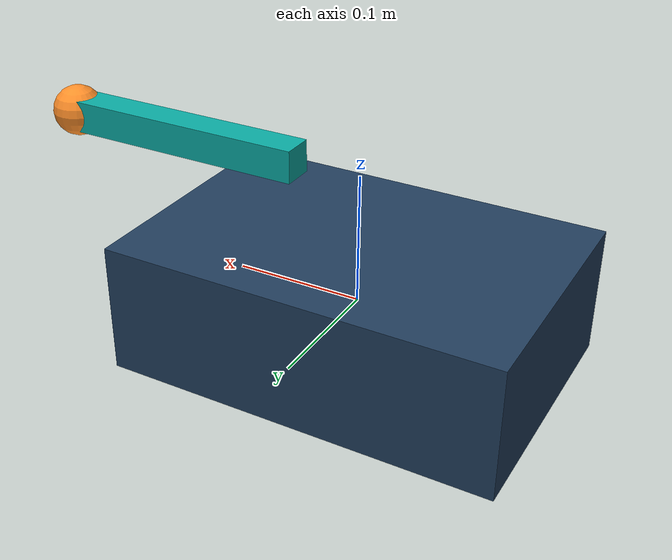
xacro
<?xml version="1.0"?>
<robot xmlns:xacro="http://www.ros.org/wiki/xacro" name="practice_cart">
  <xacro:arg name="frame_prefix" default="rover/"/><xacro:arg name="mount_x" default="0.05"/>
  <xacro:arg name="visual_x" default="0.10"/><xacro:arg name="arm_axis" default="0 0 1"/>
  <xacro:property name="p" value="$(arg frame_prefix)"/>
  <link name="${p}cart_base"><visual><geometry><box size="0.30 0.20 0.10"/></geometry><material name="navy"><color rgba="0.13 0.24 0.36 1"/></material></visual></link>
  <link name="${p}arm_link"><visual><origin xyz="$(arg visual_x) 0 0"/><geometry><box size="0.20 0.025 0.025"/></geometry><material name="teal"><color rgba="0.04 0.67 0.64 1"/></material></visual></link>
  <joint name="arm_joint" type="revolute"><parent link="${p}cart_base"/><child link="${p}arm_link"/><origin xyz="$(arg mount_x) 0 0.10"/><axis xyz="$(arg arm_axis)"/><limit lower="-3.14" upper="3.14" effort="1" velocity="1"/></joint>
  <link name="${p}probe_link"><visual><geometry><sphere radius="0.02"/></geometry><material name="orange"><color rgba="1 0.56 0.16 1"/></material></visual></link>
  <joint name="probe_joint" type="fixed"><parent link="${p}arm_link"/><child link="${p}probe_link"/><origin xyz="0.20 0 0"/></joint>
</robot>
